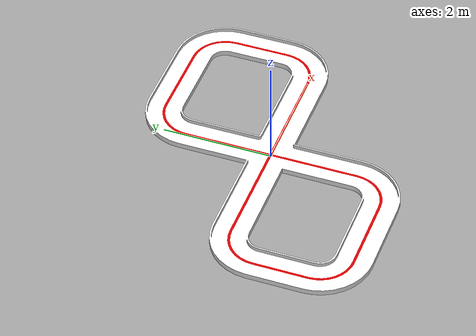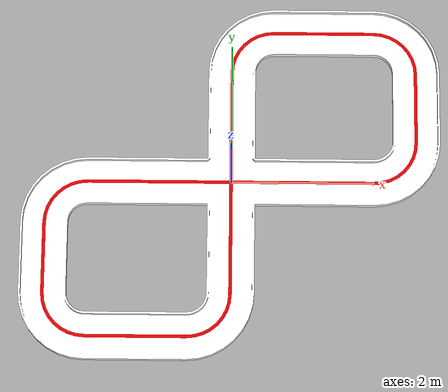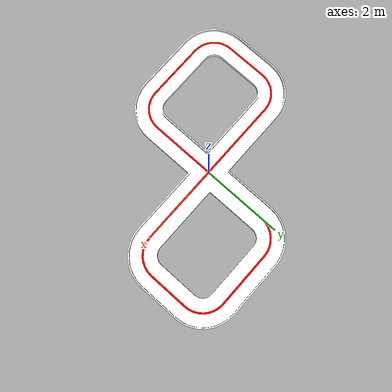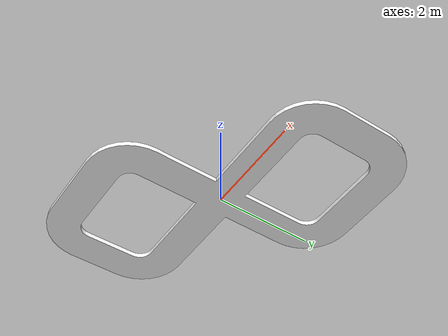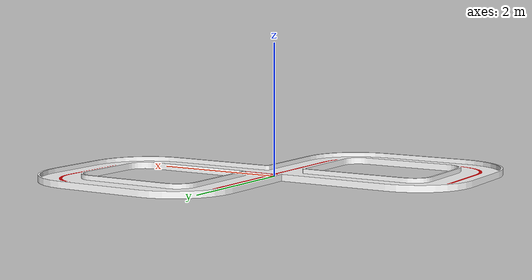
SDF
<?xml version='1.0'?>
<sdf version='1.4'>
    <model name="track">
        <static>true</static>
        <link name='track_main'>
            <pose>0 0 0 0 0 0</pose>
            <visual name='visual'>
              <geometry>
                <mesh>
                    <uri>model://car_track/meshes/track.dae</uri>
                </mesh>
              </geometry>
            </visual>
            <collision name='collision'>
              <geometry>
                <mesh>
                    <uri>model://car_track/meshes/track.dae</uri>
                </mesh>
              </geometry>
            </collision>
        </link>
    </model>
</sdf>
